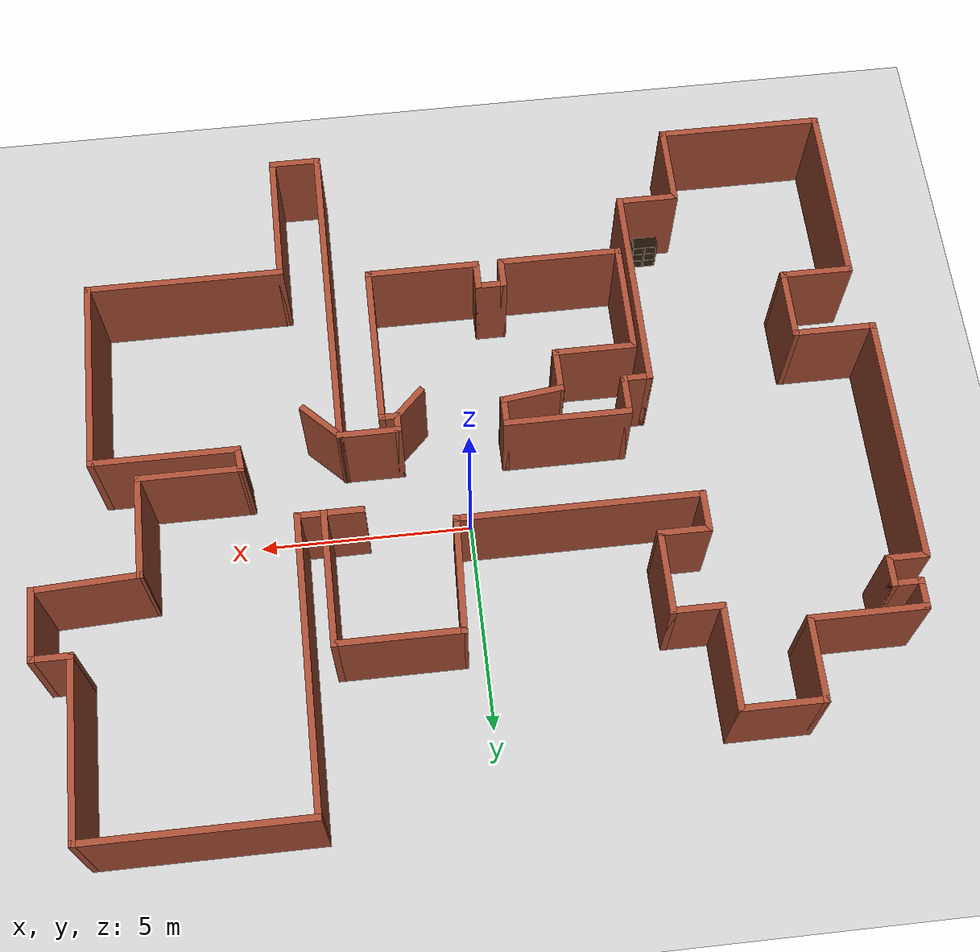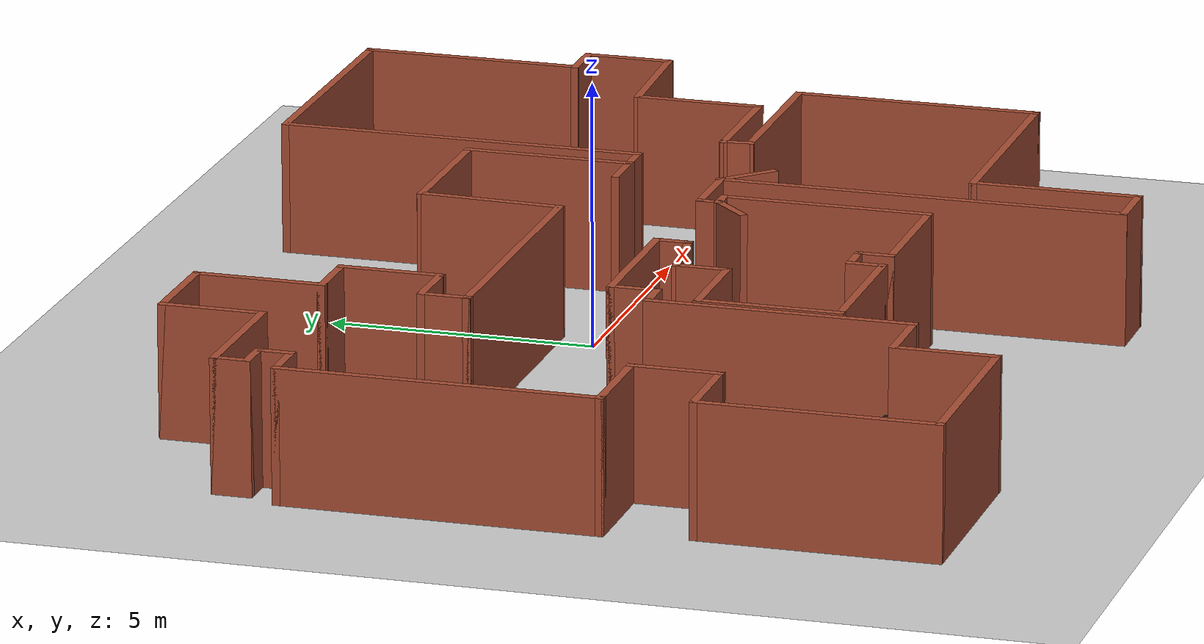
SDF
<sdf version="1.6">
 <world name="default">
  <light name="sun" type="directional">
   <pose>0 0 10 0 -0 0</pose>
   <diffuse>0.8 0.8 0.8 1</diffuse>
   <specular>0.2 0.2 0.2 1</specular>
   <attenuation>
    <range>1000</range>
    <constant>0.9</constant>
    <linear>0.01</linear>
    <quadratic>0.001</quadratic>
   </attenuation>
   <direction>-0.5 0.1 -0.9</direction>
  </light>
  <model name="ground_plane">
   <static>1</static>
   <link name="link">
    <collision name="collision">
     <geometry><plane><normal>0 0 1</normal><size>100 100</size></plane></geometry>
     <surface>
      <contact><collide_bitmask>65535</collide_bitmask></contact>
      <friction><ode><mu>100</mu><mu2>50</mu2></ode></friction>
     </surface>
    </collision>
    <visual name="visual">
     <cast_shadows>0</cast_shadows>
     <geometry><plane><normal>0 0 1</normal><size>100 100</size></plane></geometry>
     <material>
      <script><uri>file://media/materials/scripts/gazebo.material</uri><name>Gazebo/Grey</name></script>
     </material>
    </visual>
   </link>
  </model>
  <gravity>0 0 -9.8</gravity>
  <magnetic_field>6e-06 2.3e-05 -4.2e-05</magnetic_field>
  <atmosphere type="adiabatic"/>
  <physics name="default_physics" default="0" type="ode">
   <max_step_size>0.001</max_step_size>
   <real_time_factor>1</real_time_factor>
   <real_time_update_rate>1000</real_time_update_rate>
  </physics>
  <scene><ambient>0.4 0.4 0.4 1</ambient><background>0.7 0.7 0.7 1</background><shadows>1</shadows></scene>
  <audio><device>default</device></audio>
  <spherical_coordinates>
   <surface_model>EARTH_WGS84</surface_model>
   <latitude_deg>0</latitude_deg>
   <longitude_deg>0</longitude_deg>
   <elevation>0</elevation>
   <heading_deg>0</heading_deg>
  </spherical_coordinates>
  <model name="map_122">
   <pose>-0.004992 -1.02933 0 0 -0 0</pose>
   <link name="Wall_10">
    <collision name="Wall_10_Collision">
     <geometry><box><size>0.75 0.15 2.5</size></box></geometry>
     <pose>0 0 1.25 0 -0 0</pose>
    </collision>
    <visual name="Wall_10_Visual">
     <pose>0 0 1.25 0 -0 0</pose>
     <geometry><box><size>0.75 0.15 2.5</size></box></geometry>
     <material>
      <script><uri>file://media/materials/scripts/gazebo.material</uri><name>Gazebo/Bricks</name></script>
      <ambient>1 1 1 1</ambient>
     </material>
     <meta><layer>0</layer></meta>
    </visual>
    <pose>-9.05162 4.075 0 0 -0 -1.5708</pose>
   </link>
   <link name="Wall_11">
    <collision name="Wall_11_Collision">
     <geometry><box><size>1 0.15 2.5</size></box></geometry>
     <pose>0 0 1.25 0 -0 0</pose>
    </collision>
    <visual name="Wall_11_Visual">
     <pose>0 0 1.25 0 -0 0</pose>
     <geometry><box><size>1 0.15 2.5</size></box></geometry>
     <material>
      <script><uri>file://media/materials/scripts/gazebo.material</uri><name>Gazebo/Bricks</name></script>
      <ambient>1 1 1 1</ambient>
     </material>
     <meta><layer>0</layer></meta>
    </visual>
    <pose>-9.47662 3.775 0 0 -0 3.14159</pose>
   </link>
   <link name="Wall_12">
    <collision name="Wall_12_Collision">
     <geometry><box><size>6 0.15 2.5</size></box></geometry>
     <pose>0 0 1.25 0 -0 0</pose>
    </collision>
    <visual name="Wall_12_Visual">
     <pose>0 0 1.25 0 -0 0</pose>
     <geometry><box><size>6 0.15 2.5</size></box></geometry>
     <material>
      <script><uri>file://media/materials/scripts/gazebo.material</uri><name>Gazebo/Bricks</name></script>
      <ambient>1 1 1 1</ambient>
     </material>
     <meta><layer>0</layer></meta>
    </visual>
    <pose>-9.90162 0.85 0 0 -0 -1.5708</pose>
   </link>
   <link name="Wall_13">
    <collision name="Wall_13_Collision">
     <geometry><box><size>2 0.15 2.5</size></box></geometry>
     <pose>0 0 1.25 0 -0 0</pose>
    </collision>
    <visual name="Wall_13_Visual">
     <pose>0 0 1.25 0 -0 0</pose>
     <geometry><box><size>2 0.15 2.5</size></box></geometry>
     <material>
      <script><uri>file://media/materials/scripts/gazebo.material</uri><name>Gazebo/Bricks</name></script>
      <ambient>1 1 1 1</ambient>
     </material>
     <meta><layer>0</layer></meta>
    </visual>
    <pose>-8.97662 -2.075 0 0 -0 0</pose>
   </link>
   <link name="Wall_14">
    <collision name="Wall_14_Collision">
     <geometry><box><size>1.75 0.15 2.5</size></box></geometry>
     <pose>0 0 1.25 0 -0 0</pose>
    </collision>
    <visual name="Wall_14_Visual">
     <pose>0 0 1.25 0 -0 0</pose>
     <geometry><box><size>1.75 0.15 2.5</size></box></geometry>
     <material>
      <script><uri>file://media/materials/scripts/gazebo.material</uri><name>Gazebo/Bricks</name></script>
      <ambient>1 1 1 1</ambient>
     </material>
     <meta><layer>0</layer></meta>
    </visual>
    <pose>-8.05162 -2.875 0 0 -0 -1.5708</pose>
   </link>
   <link name="Wall_15">
    <collision name="Wall_15_Collision">
     <geometry><box><size>1.75 0.15 2.5</size></box></geometry>
     <pose>0 0 1.25 0 -0 0</pose>
    </collision>
    <visual name="Wall_15_Visual">
     <pose>0 0 1.25 0 -0 0</pose>
     <geometry><box><size>1.75 0.15 2.5</size></box></geometry>
     <material>
      <script><uri>file://media/materials/scripts/gazebo.material</uri><name>Gazebo/Bricks</name></script>
      <ambient>1 1 1 1</ambient>
     </material>
     <meta><layer>0</layer></meta>
    </visual>
    <pose>-8.85162 -3.675 0 0 -0 3.14159</pose>
   </link>
   <link name="Wall_16">
    <collision name="Wall_16_Collision">
     <geometry><box><size>4.5 0.15 2.5</size></box></geometry>
     <pose>0 0 1.25 0 -0 0</pose>
    </collision>
    <visual name="Wall_16_Visual">
     <pose>0 0 1.25 0 -0 0</pose>
     <geometry><box><size>4.5 0.15 2.5</size></box></geometry>
     <material>
      <script><uri>file://media/materials/scripts/gazebo.material</uri><name>Gazebo/Bricks</name></script>
      <ambient>1 1 1 1</ambient>
     </material>
     <meta><layer>0</layer></meta>
    </visual>
    <pose>-9.65162 -5.85 0 0 -0 -1.5708</pose>
   </link>
   <link name="Wall_17">
    <collision name="Wall_17_Collision">
     <geometry><box><size>4 0.15 2.5</size></box></geometry>
     <pose>0 0 1.25 0 -0 0</pose>
    </collision>
    <visual name="Wall_17_Visual">
     <pose>0 0 1.25 0 -0 0</pose>
     <geometry><box><size>4 0.15 2.5</size></box></geometry>
     <material>
      <script><uri>file://media/materials/scripts/gazebo.material</uri><name>Gazebo/Bricks</name></script>
      <ambient>1 1 1 1</ambient>
     </material>
     <meta><layer>0</layer></meta>
    </visual>
    <pose>-7.72662 -8.025 0 0 -0 0</pose>
   </link>
   <link name="Wall_18">
    <collision name="Wall_18_Collision">
     <geometry><box><size>2 0.15 2.5</size></box></geometry>
     <pose>0 0 1.25 0 -0 0</pose>
    </collision>
    <visual name="Wall_18_Visual">
     <pose>0 0 1.25 0 -0 0</pose>
     <geometry><box><size>2 0.15 2.5</size></box></geometry>
     <material>
      <script><uri>file://media/materials/scripts/gazebo.material</uri><name>Gazebo/Bricks</name></script>
      <ambient>1 1 1 1</ambient>
     </material>
     <meta><layer>0</layer></meta>
    </visual>
    <pose>-5.80162 -7.1 0 0 -0 1.5708</pose>
   </link>
   <link name="Wall_19">
    <collision name="Wall_19_Collision">
     <geometry><box><size>1.5 0.15 2.5</size></box></geometry>
     <pose>0 0 1.25 0 -0 0</pose>
    </collision>
    <visual name="Wall_19_Visual">
     <pose>0 0 1.25 0 -0 0</pose>
     <geometry><box><size>1.5 0.15 2.5</size></box></geometry>
     <material>
      <script><uri>file://media/materials/scripts/gazebo.material</uri><name>Gazebo/Bricks</name></script>
      <ambient>1 1 1 1</ambient>
     </material>
     <meta><layer>0</layer></meta>
    </visual>
    <pose>-5.12662 -6.175 0 0 -0 0</pose>
   </link>
   <link name="Wall_20">
    <collision name="Wall_20_Collision">
     <geometry><box><size>5 0.15 2.5</size></box></geometry>
     <pose>0 0 1.25 0 -0 0</pose>
    </collision>
    <visual name="Wall_20_Visual">
     <pose>0 0 1.25 0 -0 0</pose>
     <geometry><box><size>5 0.15 2.5</size></box></geometry>
     <material>
      <script><uri>file://media/materials/scripts/gazebo.material</uri><name>Gazebo/Bricks</name></script>
      <ambient>1 1 1 1</ambient>
     </material>
     <meta><layer>0</layer></meta>
    </visual>
    <pose>-4.45162 -3.75 0 0 -0 1.5708</pose>
   </link>
   <link name="Wall_21">
    <collision name="Wall_21_Collision">
     <geometry><box><size>0.75 0.15 2.5</size></box></geometry>
     <pose>0 0 1.25 0 -0 0</pose>
    </collision>
    <visual name="Wall_21_Visual">
     <pose>0 0 1.25 0 -0 0</pose>
     <geometry><box><size>0.75 0.15 2.5</size></box></geometry>
     <material>
      <script><uri>file://media/materials/scripts/gazebo.material</uri><name>Gazebo/Bricks</name></script>
      <ambient>1 1 1 1</ambient>
     </material>
     <meta><layer>0</layer></meta>
    </visual>
    <pose>-4.15162 -1.325 0 0 -0 0</pose>
   </link>
   <link name="Wall_22">
    <collision name="Wall_22_Collision">
     <geometry><box><size>1 0.15 2.5</size></box></geometry>
     <pose>0 0 1.25 0 -0 0</pose>
    </collision>
    <visual name="Wall_22_Visual">
     <pose>0 0 1.25 0 -0 0</pose>
     <geometry><box><size>1 0.15 2.5</size></box></geometry>
     <material>
      <script><uri>file://media/materials/scripts/gazebo.material</uri><name>Gazebo/Bricks</name></script>
      <ambient>1 1 1 1</ambient>
     </material>
     <meta><layer>0</layer></meta>
    </visual>
    <pose>-3.85162 -0.9 0 0 -0 1.5708</pose>
   </link>
   <link name="Wall_26">
    <collision name="Wall_26_Collision">
     <geometry><box><size>1.08818 0.15 2.5</size></box></geometry>
     <pose>0 0 1.25 0 -0 0</pose>
    </collision>
    <visual name="Wall_26_Visual">
     <pose>0 0 1.25 0 -0 0</pose>
     <geometry><box><size>1.08818 0.15 2.5</size></box></geometry>
     <material>
      <script><uri>file://media/materials/scripts/gazebo.material</uri><name>Gazebo/Bricks</name></script>
      <ambient>1 1 1 1</ambient>
     </material>
     <meta><layer>0</layer></meta>
    </visual>
    <pose>-2.35162 -1.70591 0 0 -0 -1.5708</pose>
   </link>
   <link name="Wall_27">
    <collision name="Wall_27_Collision">
     <geometry><box><size>2 0.15 2.5</size></box></geometry>
     <pose>0 0 1.25 0 -0 0</pose>
    </collision>
    <visual name="Wall_27_Visual">
     <pose>0 0 1.25 0 -0 0</pose>
     <geometry><box><size>2 0.15 2.5</size></box></geometry>
     <material>
      <script><uri>file://media/materials/scripts/gazebo.material</uri><name>Gazebo/Bricks</name></script>
      <ambient>1 1 1 1</ambient>
     </material>
     <meta><layer>0</layer></meta>
    </visual>
    <pose>-3.27662 -2.175 0 0 -0 3.14159</pose>
   </link>
   <link name="Wall_28">
    <collision name="Wall_28_Collision">
     <geometry><box><size>2.75 0.15 2.5</size></box></geometry>
     <pose>0 0 1.25 0 -0 0</pose>
    </collision>
    <visual name="Wall_28_Visual">
     <pose>0 0 1.25 0 -0 0</pose>
     <geometry><box><size>2.75 0.15 2.5</size></box></geometry>
     <material>
      <script><uri>file://media/materials/scripts/gazebo.material</uri><name>Gazebo/Bricks</name></script>
      <ambient>1 1 1 1</ambient>
     </material>
     <meta><layer>0</layer></meta>
    </visual>
    <pose>-4.20162 -3.475 0 0 -0 -1.5708</pose>
   </link>
   <link name="Wall_29">
    <collision name="Wall_29_Collision">
     <geometry><box><size>3 0.15 2.5</size></box></geometry>
     <pose>0 0 1.25 0 -0 0</pose>
    </collision>
    <visual name="Wall_29_Visual">
     <pose>0 0 1.25 0 -0 0</pose>
     <geometry><box><size>3 0.15 2.5</size></box></geometry>
     <material>
      <script><uri>file://media/materials/scripts/gazebo.material</uri><name>Gazebo/Bricks</name></script>
      <ambient>1 1 1 1</ambient>
     </material>
     <meta><layer>0</layer></meta>
    </visual>
    <pose>-2.77662 -4.775 0 0 -0 0</pose>
   </link>
   <link name="Wall_30">
    <collision name="Wall_30_Collision">
     <geometry><box><size>0.75 0.15 2.5</size></box></geometry>
     <pose>0 0 1.25 0 -0 0</pose>
    </collision>
    <visual name="Wall_30_Visual">
     <pose>0 0 1.25 0 -0 0</pose>
     <geometry><box><size>0.75 0.15 2.5</size></box></geometry>
     <material>
      <script><uri>file://media/materials/scripts/gazebo.material</uri><name>Gazebo/Bricks</name></script>
      <ambient>1 1 1 1</ambient>
     </material>
     <meta><layer>0</layer></meta>
    </visual>
    <pose>-1.35162 -4.475 0 0 -0 1.5708</pose>
   </link>
   <link name="Wall_31">
    <collision name="Wall_31_Collision">
     <geometry><box><size>0.75 0.15 2.5</size></box></geometry>
     <pose>0 0 1.25 0 -0 0</pose>
    </collision>
    <visual name="Wall_31_Visual">
     <pose>0 0 1.25 0 -0 0</pose>
     <geometry><box><size>0.75 0.15 2.5</size></box></geometry>
     <material>
      <script><uri>file://media/materials/scripts/gazebo.material</uri><name>Gazebo/Bricks</name></script>
      <ambient>1 1 1 1</ambient>
     </material>
     <meta><layer>0</layer></meta>
    </visual>
    <pose>-1.05162 -4.175 0 0 -0 0</pose>
   </link>
   <link name="Wall_32">
    <collision name="Wall_32_Collision">
     <geometry><box><size>0.75 0.15 2.5</size></box></geometry>
     <pose>0 0 1.25 0 -0 0</pose>
    </collision>
    <visual name="Wall_32_Visual">
     <pose>0 0 1.25 0 -0 0</pose>
     <geometry><box><size>0.75 0.15 2.5</size></box></geometry>
     <material>
      <script><uri>file://media/materials/scripts/gazebo.material</uri><name>Gazebo/Bricks</name></script>
      <ambient>1 1 1 1</ambient>
     </material>
     <meta><layer>0</layer></meta>
    </visual>
    <pose>-0.751622 -4.475 0 0 -0 -1.5708</pose>
   </link>
   <link name="Wall_33">
    <collision name="Wall_33_Collision">
     <geometry><box><size>2.75 0.15 2.5</size></box></geometry>
     <pose>0 0 1.25 0 -0 0</pose>
    </collision>
    <visual name="Wall_33_Visual">
     <pose>0 0 1.25 0 -0 0</pose>
     <geometry><box><size>2.75 0.15 2.5</size></box></geometry>
     <material>
      <script><uri>file://media/materials/scripts/gazebo.material</uri><name>Gazebo/Bricks</name></script>
      <ambient>1 1 1 1</ambient>
     </material>
     <meta><layer>0</layer></meta>
    </visual>
    <pose>0.548378 -4.775 0 0 -0 0</pose>
   </link>
   <link name="Wall_38">
    <collision name="Wall_38_Collision">
     <geometry><box><size>4 0.15 2.5</size></box></geometry>
     <pose>0 0 1.25 0 -0 0</pose>
    </collision>
    <visual name="Wall_38_Visual">
     <pose>0 0 1.25 0 -0 0</pose>
     <geometry><box><size>4 0.15 2.5</size></box></geometry>
     <material>
      <script><uri>file://media/materials/scripts/gazebo.material</uri><name>Gazebo/Bricks</name></script>
      <ambient>1 1 1 1</ambient>
     </material>
     <meta><layer>0</layer></meta>
    </visual>
    <pose>1.84838 -2.85 0 0 -0 1.5708</pose>
   </link>
   <link name="Wall_39">
    <collision name="Wall_39_Collision">
     <geometry><box><size>0.5 0.15 2.5</size></box></geometry>
     <pose>0 0 1.25 0 -0 0</pose>
    </collision>
    <visual name="Wall_39_Visual">
     <pose>0 0 1.25 0 -0 0</pose>
     <geometry><box><size>0.5 0.15 2.5</size></box></geometry>
     <material>
      <script><uri>file://media/materials/scripts/gazebo.material</uri><name>Gazebo/Bricks</name></script>
      <ambient>1 1 1 1</ambient>
     </material>
     <meta><layer>0</layer></meta>
    </visual>
    <pose>1.67338 -0.925 0 0 -0 3.14159</pose>
   </link>
   <link name="Wall_40">
    <collision name="Wall_40_Collision">
     <geometry><box><size>0.5 0.15 2.5</size></box></geometry>
     <pose>0 0 1.25 0 -0 0</pose>
    </collision>
    <visual name="Wall_40_Visual">
     <pose>0 0 1.25 0 -0 0</pose>
     <geometry><box><size>0.5 0.15 2.5</size></box></geometry>
     <material>
      <script><uri>file://media/materials/scripts/gazebo.material</uri><name>Gazebo/Bricks</name></script>
      <ambient>1 1 1 1</ambient>
     </material>
     <meta><layer>0</layer></meta>
    </visual>
    <pose>1.49838 -0.75 0 0 -0 1.5708</pose>
   </link>
   <link name="Wall_44">
    <collision name="Wall_44_Collision">
     <geometry><box><size>3.25 0.15 2.5</size></box></geometry>
     <pose>0 0 1.25 0 -0 0</pose>
    </collision>
    <visual name="Wall_44_Visual">
     <pose>0 0 1.25 0 -0 0</pose>
     <geometry><box><size>3.25 0.15 2.5</size></box></geometry>
     <material>
      <script><uri>file://media/materials/scripts/gazebo.material</uri><name>Gazebo/Bricks</name></script>
      <ambient>1 1 1 1</ambient>
     </material>
     <meta><layer>0</layer></meta>
    </visual>
    <pose>3.94838 -6.625 0 0 -0 1.5708</pose>
   </link>
   <link name="Wall_45">
    <collision name="Wall_45_Collision">
     <geometry><box><size>4.75 0.15 2.5</size></box></geometry>
     <pose>0 0 1.25 0 -0 0</pose>
    </collision>
    <visual name="Wall_45_Visual">
     <pose>0 0 1.25 0 -0 0</pose>
     <geometry><box><size>4.75 0.15 2.5</size></box></geometry>
     <material>
      <script><uri>file://media/materials/scripts/gazebo.material</uri><name>Gazebo/Bricks</name></script>
      <ambient>1 1 1 1</ambient>
     </material>
     <meta><layer>0</layer></meta>
    </visual>
    <pose>6.24838 -5.075 0 0 -0 0</pose>
   </link>
   <link name="Wall_46">
    <collision name="Wall_46_Collision">
     <geometry><box><size>4.75 0.15 2.5</size></box></geometry>
     <pose>0 0 1.25 0 -0 0</pose>
    </collision>
    <visual name="Wall_46_Visual">
     <pose>0 0 1.25 0 -0 0</pose>
     <geometry><box><size>4.75 0.15 2.5</size></box></geometry>
     <material>
      <script><uri>file://media/materials/scripts/gazebo.material</uri><name>Gazebo/Bricks</name></script>
      <ambient>1 1 1 1</ambient>
     </material>
     <meta><layer>0</layer></meta>
    </visual>
    <pose>8.54838 -2.775 0 0 -0 1.5708</pose>
   </link>
   <link name="Wall_47">
    <collision name="Wall_47_Collision">
     <geometry><box><size>3.5 0.15 2.5</size></box></geometry>
     <pose>0 0 1.25 0 -0 0</pose>
    </collision>
    <visual name="Wall_47_Visual">
     <pose>0 0 1.25 0 -0 0</pose>
     <geometry><box><size>3.5 0.15 2.5</size></box></geometry>
     <material>
      <script><uri>file://media/materials/scripts/gazebo.material</uri><name>Gazebo/Bricks</name></script>
      <ambient>1 1 1 1</ambient>
     </material>
     <meta><layer>0</layer></meta>
    </visual>
    <pose>6.87338 -0.475 0 0 -0 3.14159</pose>
   </link>
   <link name="Wall_51">
    <collision name="Wall_51_Collision">
     <geometry><box><size>0.646458 0.15 2.5</size></box></geometry>
     <pose>0 0 1.25 0 -0 0</pose>
    </collision>
    <visual name="Wall_51_Visual">
     <pose>0 0 1.25 0 -0 0</pose>
     <geometry><box><size>0.646458 0.15 2.5</size></box></geometry>
     <material>
      <script><uri>file://media/materials/scripts/gazebo.material</uri><name>Gazebo/Bricks</name></script>
      <ambient>1 1 1 1</ambient>
     </material>
     <meta><layer>0</layer></meta>
    </visual>
    <pose>5.17178 -0.2282 0 0 -0 1.67816</pose>
   </link>
   <link name="Wall_55">
    <collision name="Wall_55_Collision">
     <geometry><box><size>1.75 0.15 2.5</size></box></geometry>
     <pose>0 0 1.25 0 -0 0</pose>
    </collision>
    <visual name="Wall_55_Visual">
     <pose>0 0 1.25 0 -0 0</pose>
     <geometry><box><size>1.75 0.15 2.5</size></box></geometry>
     <material>
      <script><uri>file://media/materials/scripts/gazebo.material</uri><name>Gazebo/Bricks</name></script>
      <ambient>1 1 1 1</ambient>
     </material>
     <meta><layer>0</layer></meta>
    </visual>
    <pose>9.89838 3.275 0 0 -0 1.5708</pose>
   </link>
   <link name="Wall_56">
    <collision name="Wall_56_Collision">
     <geometry><box><size>1 0.15 2.5</size></box></geometry>
     <pose>0 0 1.25 0 -0 0</pose>
    </collision>
    <visual name="Wall_56_Visual">
     <pose>0 0 1.25 0 -0 0</pose>
     <geometry><box><size>1 0.15 2.5</size></box></geometry>
     <material>
      <script><uri>file://media/materials/scripts/gazebo.material</uri><name>Gazebo/Bricks</name></script>
      <ambient>1 1 1 1</ambient>
     </material>
     <meta><layer>0</layer></meta>
    </visual>
    <pose>9.47338 4.075 0 0 -0 3.14159</pose>
   </link>
   <link name="Wall_57">
    <collision name="Wall_57_Collision">
     <geometry><box><size>4.25 0.15 2.5</size></box></geometry>
     <pose>0 0 1.25 0 -0 0</pose>
    </collision>
    <visual name="Wall_57_Visual">
     <pose>0 0 1.25 0 -0 0</pose>
     <geometry><box><size>4.25 0.15 2.5</size></box></geometry>
     <material>
      <script><uri>file://media/materials/scripts/gazebo.material</uri><name>Gazebo/Bricks</name></script>
      <ambient>1 1 1 1</ambient>
     </material>
     <meta><layer>0</layer></meta>
    </visual>
    <pose>9.04838 6.125 0 0 -0 1.5708</pose>
   </link>
   <link name="Wall_6">
    <collision name="Wall_6_Collision">
     <geometry><box><size>2 0.15 2.5</size></box></geometry>
     <pose>0 0 1.25 0 -0 0</pose>
    </collision>
    <visual name="Wall_6_Visual">
     <pose>0 0 1.25 0 -0 0</pose>
     <geometry><box><size>2 0.15 2.5</size></box></geometry>
     <material>
      <script><uri>file://media/materials/scripts/gazebo.material</uri><name>Gazebo/Bricks</name></script>
      <ambient>1 1 1 1</ambient>
     </material>
     <meta><layer>0</layer></meta>
    </visual>
    <pose>-7.05162 5.9 0 0 -0 -1.5708</pose>
   </link>
   <link name="Wall_60">
    <collision name="Wall_60_Collision">
     <geometry><box><size>2.5 0.15 2.5</size></box></geometry>
     <pose>0 0 1.25 0 -0 0</pose>
    </collision>
    <visual name="Wall_60_Visual">
     <pose>0 0 1.25 0 -0 0</pose>
     <geometry><box><size>2.5 0.15 2.5</size></box></geometry>
     <material>
      <script><uri>file://media/materials/scripts/gazebo.material</uri><name>Gazebo/Bricks</name></script>
      <ambient>1 1 1 1</ambient>
     </material>
     <meta><layer>0</layer></meta>
    </visual>
    <pose>6.32018 0.018599 0 0 -0 0</pose>
   </link>
   <link name="Wall_61">
    <collision name="Wall_61_Collision">
     <geometry><box><size>2.5 0.15 2.5</size></box></geometry>
     <pose>0 0 1.25 0 -0 0</pose>
    </collision>
    <visual name="Wall_61_Visual">
     <pose>0 0 1.25 0 -0 0</pose>
     <geometry><box><size>2.5 0.15 2.5</size></box></geometry>
     <material>
      <script><uri>file://media/materials/scripts/gazebo.material</uri><name>Gazebo/Bricks</name></script>
      <ambient>1 1 1 1</ambient>
     </material>
     <meta><layer>0</layer></meta>
    </visual>
    <pose>7.49518 1.1936 0 0 -0 1.5708</pose>
   </link>
   <link name="Wall_62">
    <collision name="Wall_62_Collision">
     <geometry><box><size>2.55556 0.15 2.5</size></box></geometry>
     <pose>0 0 1.25 0 -0 0</pose>
    </collision>
    <visual name="Wall_62_Visual">
     <pose>0 0 1.25 0 -0 0</pose>
     <geometry><box><size>2.55556 0.15 2.5</size></box></geometry>
     <material>
      <script><uri>file://media/materials/scripts/gazebo.material</uri><name>Gazebo/Bricks</name></script>
      <ambient>1 1 1 1</ambient>
     </material>
     <meta><layer>0</layer></meta>
    </visual>
    <pose>8.69678 2.4218 0 0 -0 0.044246</pose>
   </link>
   <link name="Wall_64">
    <collision name="Wall_64_Collision">
     <geometry><box><size>5.25 0.15 2.5</size></box></geometry>
     <pose>0 0 1.25 0 -0 0</pose>
    </collision>
    <visual name="Wall_64_Visual">
     <pose>0 0 1.25 0 -0 0</pose>
     <geometry><box><size>5.25 0.15 2.5</size></box></geometry>
     <material>
      <script><uri>file://media/materials/scripts/gazebo.material</uri><name>Gazebo/Bricks</name></script>
      <ambient>1 1 1 1</ambient>
     </material>
     <meta><layer>0</layer></meta>
    </visual>
    <pose>6.49838 8.175 0 0 -0 3.14159</pose>
   </link>
   <link name="Wall_65">
    <collision name="Wall_65_Collision">
     <geometry><box><size>7 0.15 2.5</size></box></geometry>
     <pose>0 0 1.25 0 -0 0</pose>
    </collision>
    <visual name="Wall_65_Visual">
     <pose>0 0 1.25 0 -0 0</pose>
     <geometry><box><size>7 0.15 2.5</size></box></geometry>
     <material>
      <script><uri>file://media/materials/scripts/gazebo.material</uri><name>Gazebo/Bricks</name></script>
      <ambient>1 1 1 1</ambient>
     </material>
     <meta><layer>0</layer></meta>
    </visual>
    <pose>3.94838 4.75 0 0 -0 -1.5708</pose>
   </link>
   <link name="Wall_66">
    <collision name="Wall_66_Collision">
     <geometry><box><size>0.75 0.15 2.5</size></box></geometry>
     <pose>0 0 1.25 0 -0 0</pose>
    </collision>
    <visual name="Wall_66_Visual">
     <pose>0 0 1.25 0 -0 0</pose>
     <geometry><box><size>0.75 0.15 2.5</size></box></geometry>
     <material>
      <script><uri>file://media/materials/scripts/gazebo.material</uri><name>Gazebo/Bricks</name></script>
      <ambient>1 1 1 1</ambient>
     </material>
     <meta><layer>0</layer></meta>
    </visual>
    <pose>3.64838 1.325 0 0 -0 3.14159</pose>
   </link>
   <link name="Wall_67">
    <collision name="Wall_67_Collision">
     <geometry><box><size>3.25 0.15 2.5</size></box></geometry>
     <pose>0 0 1.25 0 -0 0</pose>
    </collision>
    <visual name="Wall_67_Visual">
     <pose>0 0 1.25 0 -0 0</pose>
     <geometry><box><size>3.25 0.15 2.5</size></box></geometry>
     <material>
      <script><uri>file://media/materials/scripts/gazebo.material</uri><name>Gazebo/Bricks</name></script>
      <ambient>1 1 1 1</ambient>
     </material>
     <meta><layer>0</layer></meta>
    </visual>
    <pose>3.34838 2.875 0 0 -0 1.5708</pose>
   </link>
   <link name="Wall_68">
    <collision name="Wall_68_Collision">
     <geometry><box><size>3 0.15 2.5</size></box></geometry>
     <pose>0 0 1.25 0 -0 0</pose>
    </collision>
    <visual name="Wall_68_Visual">
     <pose>0 0 1.25 0 -0 0</pose>
     <geometry><box><size>3 0.15 2.5</size></box></geometry>
     <material>
      <script><uri>file://media/materials/scripts/gazebo.material</uri><name>Gazebo/Bricks</name></script>
      <ambient>1 1 1 1</ambient>
     </material>
     <meta><layer>0</layer></meta>
    </visual>
    <pose>1.92338 4.425 0 0 -0 3.14159</pose>
   </link>
   <link name="Wall_7">
    <collision name="Wall_7_Collision">
     <geometry><box><size>2.75 0.15 2.5</size></box></geometry>
     <pose>0 0 1.25 0 -0 0</pose>
    </collision>
    <visual name="Wall_7_Visual">
     <pose>0 0 1.25 0 -0 0</pose>
     <geometry><box><size>2.75 0.15 2.5</size></box></geometry>
     <material>
      <script><uri>file://media/materials/scripts/gazebo.material</uri><name>Gazebo/Bricks</name></script>
      <ambient>1 1 1 1</ambient>
     </material>
     <meta><layer>0</layer></meta>
    </visual>
    <pose>-8.35162 4.975 0 0 -0 3.14159</pose>
   </link>
   <link name="Wall_72">
    <collision name="Wall_72_Collision">
     <geometry><box><size>2 0.15 2.5</size></box></geometry>
     <pose>0 0 1.25 0 -0 0</pose>
    </collision>
    <visual name="Wall_72_Visual">
     <pose>0 0 1.25 0 -0 0</pose>
     <geometry><box><size>2 0.15 2.5</size></box></geometry>
     <material>
      <script><uri>file://media/materials/scripts/gazebo.material</uri><name>Gazebo/Bricks</name></script>
      <ambient>1 1 1 1</ambient>
     </material>
     <meta><layer>0</layer></meta>
    </visual>
    <pose>-6.12662 6.825 0 0 -0 0</pose>
   </link>
   <link name="Wall_73">
    <collision name="Wall_73_Collision">
     <geometry><box><size>2.5 0.15 2.5</size></box></geometry>
     <pose>0 0 1.25 0 -0 0</pose>
    </collision>
    <visual name="Wall_73_Visual">
     <pose>0 0 1.25 0 -0 0</pose>
     <geometry><box><size>2.5 0.15 2.5</size></box></geometry>
     <material>
      <script><uri>file://media/materials/scripts/gazebo.material</uri><name>Gazebo/Bricks</name></script>
      <ambient>1 1 1 1</ambient>
     </material>
     <meta><layer>0</layer></meta>
    </visual>
    <pose>-5.20162 5.65 0 0 -0 -1.5708</pose>
   </link>
   <link name="Wall_74">
    <collision name="Wall_74_Collision">
     <geometry><box><size>1.25 0.15 2.5</size></box></geometry>
     <pose>0 0 1.25 0 -0 0</pose>
    </collision>
    <visual name="Wall_74_Visual">
     <pose>0 0 1.25 0 -0 0</pose>
     <geometry><box><size>1.25 0.15 2.5</size></box></geometry>
     <material>
      <script><uri>file://media/materials/scripts/gazebo.material</uri><name>Gazebo/Bricks</name></script>
      <ambient>1 1 1 1</ambient>
     </material>
     <meta><layer>0</layer></meta>
    </visual>
    <pose>-4.65162 4.475 0 0 -0 0</pose>
   </link>
   <link name="Wall_75">
    <collision name="Wall_75_Collision">
     <geometry><box><size>2 0.15 2.5</size></box></geometry>
     <pose>0 0 1.25 0 -0 0</pose>
    </collision>
    <visual name="Wall_75_Visual">
     <pose>0 0 1.25 0 -0 0</pose>
     <geometry><box><size>2 0.15 2.5</size></box></geometry>
     <material>
      <script><uri>file://media/materials/scripts/gazebo.material</uri><name>Gazebo/Bricks</name></script>
      <ambient>1 1 1 1</ambient>
     </material>
     <meta><layer>0</layer></meta>
    </visual>
    <pose>-4.10162 3.55 0 0 -0 -1.5708</pose>
   </link>
   <link name="Wall_76">
    <collision name="Wall_76_Collision">
     <geometry><box><size>1.25 0.15 2.5</size></box></geometry>
     <pose>0 0 1.25 0 -0 0</pose>
    </collision>
    <visual name="Wall_76_Visual">
     <pose>0 0 1.25 0 -0 0</pose>
     <geometry><box><size>1.25 0.15 2.5</size></box></geometry>
     <material>
      <script><uri>file://media/materials/scripts/gazebo.material</uri><name>Gazebo/Bricks</name></script>
      <ambient>1 1 1 1</ambient>
     </material>
     <meta><layer>0</layer></meta>
    </visual>
    <pose>-4.65162 2.625 0 0 -0 3.14159</pose>
   </link>
   <link name="Wall_77">
    <collision name="Wall_77_Collision">
     <geometry><box><size>1 0.15 2.5</size></box></geometry>
     <pose>0 0 1.25 0 -0 0</pose>
    </collision>
    <visual name="Wall_77_Visual">
     <pose>0 0 1.25 0 -0 0</pose>
     <geometry><box><size>1 0.15 2.5</size></box></geometry>
     <material>
      <script><uri>file://media/materials/scripts/gazebo.material</uri><name>Gazebo/Bricks</name></script>
      <ambient>1 1 1 1</ambient>
     </material>
     <meta><layer>0</layer></meta>
    </visual>
    <pose>-5.20162 2.2 0 0 -0 -1.5708</pose>
   </link>
   <link name="Wall_79">
    <collision name="Wall_79_Collision">
     <geometry><box><size>5.75 0.15 2.5</size></box></geometry>
     <pose>0 0 1.25 0 -0 0</pose>
    </collision>
    <visual name="Wall_79_Visual">
     <pose>0 0 1.25 0 -0 0</pose>
     <geometry><box><size>5.75 0.15 2.5</size></box></geometry>
     <material>
      <script><uri>file://media/materials/scripts/gazebo.material</uri><name>Gazebo/Bricks</name></script>
      <ambient>1 1 1 1</ambient>
     </material>
     <meta><layer>0</layer></meta>
    </visual>
    <pose>-2.40162 1.775 0 0 -0 0</pose>
   </link>
   <link name="Wall_8">
    <collision name="Wall_8_Collision">
     <geometry><box><size>0.75 0.15 2.5</size></box></geometry>
     <pose>0 0 1.25 0 -0 0</pose>
    </collision>
    <visual name="Wall_8_Visual">
     <pose>0 0 1.25 0 -0 0</pose>
     <geometry><box><size>0.75 0.15 2.5</size></box></geometry>
     <material>
      <script><uri>file://media/materials/scripts/gazebo.material</uri><name>Gazebo/Bricks</name></script>
      <ambient>1 1 1 1</ambient>
     </material>
     <meta><layer>0</layer></meta>
    </visual>
    <pose>-9.65162 4.675 0 0 -0 -1.5708</pose>
   </link>
   <link name="Wall_80">
    <collision name="Wall_80_Collision">
     <geometry><box><size>2.80189 0.15 2.5</size></box></geometry>
     <pose>0 0 1.25 0 -0 0</pose>
    </collision>
    <visual name="Wall_80_Visual">
     <pose>0 0 1.25 0 -0 0</pose>
     <geometry><box><size>2.80189 0.15 2.5</size></box></geometry>
     <material>
      <script><uri>file://media/materials/scripts/gazebo.material</uri><name>Gazebo/Bricks</name></script>
      <ambient>1 1 1 1</ambient>
     </material>
     <meta><layer>0</layer></meta>
    </visual>
    <pose>0.448378 3.1 0 0 -0 1.53308</pose>
   </link>
   <link name="Wall_82">
    <collision name="Wall_82_Collision">
     <geometry><box><size>3 0.15 2.5</size></box></geometry>
     <pose>0 0 1.25 0 -0 0</pose>
    </collision>
    <visual name="Wall_82_Visual">
     <pose>0 0 1.25 0 -0 0</pose>
     <geometry><box><size>3 0.15 2.5</size></box></geometry>
     <material>
      <script><uri>file://media/materials/scripts/gazebo.material</uri><name>Gazebo/Bricks</name></script>
      <ambient>1 1 1 1</ambient>
     </material>
     <meta><layer>0</layer></meta>
    </visual>
    <pose>-2.42662 -0.475 0 0 -0 0</pose>
   </link>
   <link name="Wall_83">
    <collision name="Wall_83_Collision">
     <geometry><box><size>0.75 0.15 2.5</size></box></geometry>
     <pose>0 0 1.25 0 -0 0</pose>
    </collision>
    <visual name="Wall_83_Visual">
     <pose>0 0 1.25 0 -0 0</pose>
     <geometry><box><size>0.75 0.15 2.5</size></box></geometry>
     <material>
      <script><uri>file://media/materials/scripts/gazebo.material</uri><name>Gazebo/Bricks</name></script>
      <ambient>1 1 1 1</ambient>
     </material>
     <meta><layer>0</layer></meta>
    </visual>
    <pose>-1.00162 -0.775 0 0 -0 -1.5708</pose>
   </link>
   <link name="Wall_84">
    <collision name="Wall_84_Collision">
     <geometry><box><size>1.50966 0.15 2.5</size></box></geometry>
     <pose>0 0 1.25 0 -0 0</pose>
    </collision>
    <visual name="Wall_84_Visual">
     <pose>0 0 1.25 0 -0 0</pose>
     <geometry><box><size>1.50966 0.15 2.5</size></box></geometry>
     <material>
      <script><uri>file://media/materials/scripts/gazebo.material</uri><name>Gazebo/Bricks</name></script>
      <ambient>1 1 1 1</ambient>
     </material>
     <meta><layer>0</layer></meta>
    </visual>
    <pose>-1.67662 -1.15591 0 0 -0 -3.02229</pose>
   </link>
   <link name="Wall_86">
    <collision name="Wall_86_Collision">
     <geometry><box><size>1 0.15 2.5</size></box></geometry>
     <pose>0 0 1.25 0 -0 0</pose>
    </collision>
    <visual name="Wall_86_Visual">
     <pose>0 0 1.25 0 -0 0</pose>
     <geometry><box><size>1 0.15 2.5</size></box></geometry>
     <material>
      <script><uri>file://media/materials/scripts/gazebo.material</uri><name>Gazebo/Bricks</name></script>
      <ambient>1 1 1 1</ambient>
     </material>
     <meta><layer>0</layer></meta>
    </visual>
    <pose>1.19786 -1.22552 0 0 -0 -2.35619</pose>
   </link>
   <link name="Wall_88">
    <collision name="Wall_88_Collision">
     <geometry><box><size>1.5 0.15 2.5</size></box></geometry>
     <pose>0 0 1.25 0 -0 0</pose>
    </collision>
    <visual name="Wall_88_Visual">
     <pose>0 0 1.25 0 -0 0</pose>
     <geometry><box><size>1.5 0.15 2.5</size></box></geometry>
     <material>
      <script><uri>file://media/materials/scripts/gazebo.material</uri><name>Gazebo/Bricks</name></script>
      <ambient>1 1 1 1</ambient>
     </material>
     <meta><layer>0</layer></meta>
    </visual>
    <pose>2.17338 -0.575 0 0 -0 0</pose>
   </link>
   <link name="Wall_89">
    <collision name="Wall_89_Collision">
     <geometry><box><size>7.75 0.15 2.5</size></box></geometry>
     <pose>0 0 1.25 0 -0 0</pose>
    </collision>
    <visual name="Wall_89_Visual">
     <pose>0 0 1.25 0 -0 0</pose>
     <geometry><box><size>7.75 0.15 2.5</size></box></geometry>
     <material>
      <script><uri>file://media/materials/scripts/gazebo.material</uri><name>Gazebo/Bricks</name></script>
      <ambient>1 1 1 1</ambient>
     </material>
     <meta><layer>0</layer></meta>
    </visual>
    <pose>2.84838 -4.375 0 0 -0 -1.5708</pose>
   </link>
   <link name="Wall_9">
    <collision name="Wall_9_Collision">
     <geometry><box><size>0.75 0.15 2.5</size></box></geometry>
     <pose>0 0 1.25 0 -0 0</pose>
    </collision>
    <visual name="Wall_9_Visual">
     <pose>0 0 1.25 0 -0 0</pose>
     <geometry><box><size>0.75 0.15 2.5</size></box></geometry>
     <material>
      <script><uri>file://media/materials/scripts/gazebo.material</uri><name>Gazebo/Bricks</name></script>
      <ambient>1 1 1 1</ambient>
     </material>
     <meta><layer>0</layer></meta>
    </visual>
    <pose>-9.35162 4.375 0 0 -0 0</pose>
   </link>
   <link name="Wall_90">
    <collision name="Wall_90_Collision">
     <geometry><box><size>1.25 0.15 2.5</size></box></geometry>
     <pose>0 0 1.25 0 -0 0</pose>
    </collision>
    <visual name="Wall_90_Visual">
     <pose>0 0 1.25 0 -0 0</pose>
     <geometry><box><size>1.25 0.15 2.5</size></box></geometry>
     <material>
      <script><uri>file://media/materials/scripts/gazebo.material</uri><name>Gazebo/Bricks</name></script>
      <ambient>1 1 1 1</ambient>
     </material>
     <meta><layer>0</layer></meta>
    </visual>
    <pose>3.39838 -8.175 0 0 -0 0</pose>
   </link>
   <link name="Wall_92">
    <collision name="Wall_92_Collision">
     <geometry><box><size>1.25 0.15 2.5</size></box></geometry>
     <pose>0 0 1.25 0 -0 0</pose>
    </collision>
    <visual name="Wall_92_Visual">
     <pose>0 0 1.25 0 -0 0</pose>
     <geometry><box><size>1.25 0.15 2.5</size></box></geometry>
     <material>
      <script><uri>file://media/materials/scripts/gazebo.material</uri><name>Gazebo/Bricks</name></script>
      <ambient>1 1 1 1</ambient>
     </material>
     <meta><layer>0</layer></meta>
    </visual>
    <pose>3.23729 -0.963909 0 0 -0 -0.785398</pose>
   </link>
   <link name="Wall_94">
    <collision name="Wall_94_Collision">
     <geometry><box><size>1 0.15 2.5</size></box></geometry>
     <pose>0 0 1.25 0 -0 0</pose>
    </collision>
    <visual name="Wall_94_Visual">
     <pose>0 0 1.25 0 -0 0</pose>
     <geometry><box><size>1 0.15 2.5</size></box></geometry>
     <material>
      <script><uri>file://media/materials/scripts/gazebo.material</uri><name>Gazebo/Bricks</name></script>
      <ambient>1 1 1 1</ambient>
     </material>
     <meta><layer>0</layer></meta>
    </visual>
    <pose>2.92338 1.325 0 0 -0 3.14159</pose>
   </link>
   <static>1</static>
  </model>
  <model name="6_Cube_StorageE">
   <link name="Wall_0">
    <pose>0 0 0.01 0 -0 0</pose>
    <inertial>
     <mass>1.6201</mass>
     <inertia><ixx>0.0119</ixx><iyy>0.0631</iyy><izz>0.0513</izz><ixy>0</ixy><ixz>0</ixz><iyz>0</iyz></inertia>
    </inertial>
    <collision name="Wall_0_Collision"><geometry><box><size>0.616 0.296 0.02</size></box></geometry></collision>
    <visual name="Wall_0_Visual">
     <geometry><box><size>0.616 0.296 0.02</size></box></geometry>
     <material>
      <script><uri>file://media/materials/scripts/gazebo.material</uri><name>Gazebo/Grey</name></script>
      <ambient>0.105882 0.0509804 0 1</ambient>
     </material>
    </visual>
   </link>
   <joint name="0_2" type="fixed">
    <pose>-0.308 0 0 0 -0 0</pose>
    <parent>Wall_2</parent>
    <child>Wall_0</child>
    <axis>
     <xyz>1 0 0</xyz>
     <use_parent_model_frame>0</use_parent_model_frame>
     <limit><lower>-1e+16</lower><upper>1e+16</upper></limit>
    </axis>
   </joint>
   <joint name="0_12" type="fixed">
    <parent>Wall_12</parent>
    <child>Wall_0</child>
    <axis>
     <xyz>0 0 1</xyz>
     <use_parent_model_frame>0</use_parent_model_frame>
     <limit><lower>-1e+16</lower><upper>1e+16</upper></limit>
    </axis>
   </joint>
   <joint name="0_4" type="fixed">
    <pose>0.308 0 0 0 -0 0</pose>
    <parent>Wall_4</parent>
    <child>Wall_0</child>
    <axis>
     <xyz>1 0 0</xyz>
     <use_parent_model_frame>0</use_parent_model_frame>
     <limit><lower>-1e+16</lower><upper>1e+16</upper></limit>
    </axis>
   </joint>
   <link name="Wall_10">
    <pose>0 0 0.61 0 -0 0</pose>
    <inertial>
     <mass>1.6201</mass>
     <inertia><ixx>0.0119</ixx><iyy>0.0631</iyy><izz>0.0513</izz><ixy>0</ixy><ixz>0</ixz><iyz>0</iyz></inertia>
    </inertial>
    <collision name="Wall_10_Collision"><geometry><box><size>0.616 0.296 0.02</size></box></geometry></collision>
    <visual name="Wall_10_Visual">
     <geometry><box><size>0.616 0.296 0.02</size></box></geometry>
     <material>
      <script><uri>file://media/materials/scripts/gazebo.material</uri><name>Gazebo/Grey</name></script>
      <ambient>0.105882 0.0509804 0 1</ambient>
     </material>
    </visual>
   </link>
   <joint name="10_2" type="fixed">
    <pose>-0.308 0 0 0 -0 0</pose>
    <parent>Wall_2</parent>
    <child>Wall_10</child>
    <axis>
     <xyz>1 0 0</xyz>
     <use_parent_model_frame>0</use_parent_model_frame>
     <limit><lower>-1e+16</lower><upper>1e+16</upper></limit>
    </axis>
   </joint>
   <joint name="10_12" type="fixed">
    <parent>Wall_12</parent>
    <child>Wall_10</child>
    <axis>
     <xyz>0 0 1</xyz>
     <use_parent_model_frame>0</use_parent_model_frame>
     <limit><lower>-1e+16</lower><upper>1e+16</upper></limit>
    </axis>
   </joint>
   <joint name="10_4" type="fixed">
    <pose>0.308 0 0 0 -0 0</pose>
    <parent>Wall_4</parent>
    <child>Wall_10</child>
    <axis>
     <xyz>1 0 0</xyz>
     <use_parent_model_frame>0</use_parent_model_frame>
     <limit><lower>-1e+16</lower><upper>1e+16</upper></limit>
    </axis>
   </joint>
   <link name="Wall_12">
    <pose>0 0 0.4575 0 -0 0</pose>
    <inertial>
     <mass>2.4065</mass>
     <inertia><ixx>0.0177</ixx><iyy>0.1855</iyy><izz>0.168</izz><ixy>0</ixy><ixz>0</ixz><iyz>0</iyz></inertia>
    </inertial>
    <collision name="Wall_12_Collision"><geometry><box><size>0.02 0.296 0.915</size></box></geometry></collision>
    <visual name="Wall_12_Visual">
     <geometry><box><size>0.02 0.296 0.915</size></box></geometry>
     <material>
      <script><uri>file://media/materials/scripts/gazebo.material</uri><name>Gazebo/Grey</name></script>
      <ambient>0.105882 0.0509804 0 1</ambient>
     </material>
    </visual>
   </link>
   <link name="Wall_2">
    <pose>-0.298 0 0.4575 0 -0 0</pose>
    <inertial>
     <mass>2.4065</mass>
     <inertia><ixx>0.0177</ixx><iyy>0.1855</iyy><izz>0.168</izz><ixy>0</ixy><ixz>0</ixz><iyz>0</iyz></inertia>
    </inertial>
    <collision name="Wall_2_Collision"><geometry><box><size>0.02 0.296 0.915</size></box></geometry></collision>
    <visual name="Wall_2_Visual">
     <geometry><box><size>0.02 0.296 0.915</size></box></geometry>
     <material>
      <script><uri>file://media/materials/scripts/gazebo.material</uri><name>Gazebo/Grey</name></script>
      <ambient>0.105882 0.0509804 0 1</ambient>
     </material>
    </visual>
   </link>
   <link name="Wall_4">
    <pose>0.298 0 0.4575 0 -0 0</pose>
    <inertial>
     <mass>2.4065</mass>
     <inertia><ixx>0.0177</ixx><iyy>0.1855</iyy><izz>0.168</izz><ixy>0</ixy><ixz>0</ixz><iyz>0</iyz></inertia>
    </inertial>
    <collision name="Wall_4_Collision"><geometry><box><size>0.02 0.296 0.915</size></box></geometry></collision>
    <visual name="Wall_4_Visual">
     <geometry><box><size>0.02 0.296 0.915</size></box></geometry>
     <material>
      <script><uri>file://media/materials/scripts/gazebo.material</uri><name>Gazebo/Grey</name></script>
      <ambient>0.105882 0.0509804 0 1</ambient>
     </material>
    </visual>
   </link>
   <link name="Wall_6">
    <pose>0 0 0.905 0 -0 0</pose>
    <inertial>
     <mass>1.6201</mass>
     <inertia><ixx>0.0119</ixx><iyy>0.0631</iyy><izz>0.0513</izz><ixy>0</ixy><ixz>0</ixz><iyz>0</iyz></inertia>
    </inertial>
    <collision name="Wall_6_Collision"><geometry><box><size>0.616 0.296 0.02</size></box></geometry></collision>
    <visual name="Wall_6_Visual">
     <geometry><box><size>0.616 0.296 0.02</size></box></geometry>
     <material>
      <script><uri>file://media/materials/scripts/gazebo.material</uri><name>Gazebo/Grey</name></script>
      <ambient>0.105882 0.0509804 0 1</ambient>
     </material>
    </visual>
   </link>
   <joint name="6_2" type="fixed">
    <pose>-0.308 0 0 0 -0 0</pose>
    <parent>Wall_2</parent>
    <child>Wall_6</child>
    <axis>
     <xyz>2 0 0</xyz>
     <use_parent_model_frame>0</use_parent_model_frame>
     <limit><lower>-1e+16</lower><upper>1e+16</upper></limit>
    </axis>
   </joint>
   <joint name="6_12" type="fixed">
    <parent>Wall_12</parent>
    <child>Wall_6</child>
    <axis>
     <xyz>0 0 1</xyz>
     <use_parent_model_frame>0</use_parent_model_frame>
     <limit><lower>-1e+16</lower><upper>1e+16</upper></limit>
    </axis>
   </joint>
   <joint name="6_4" type="fixed">
    <pose>0.308 0 0 0 -0 0</pose>
    <parent>Wall_4</parent>
    <child>Wall_6</child>
    <axis>
     <xyz>1 0 0</xyz>
     <use_parent_model_frame>0</use_parent_model_frame>
     <limit><lower>-1e+16</lower><upper>1e+16</upper></limit>
    </axis>
   </joint>
   <link name="Wall_8">
    <pose>0 0 0.305 0 -0 0</pose>
    <inertial>
     <mass>1.6201</mass>
     <inertia><ixx>0.0119</ixx><iyy>0.0631</iyy><izz>0.0513</izz><ixy>0</ixy><ixz>0</ixz><iyz>0</iyz></inertia>
    </inertial>
    <collision name="Wall_8_Collision"><geometry><box><size>0.616 0.296 0.02</size></box></geometry></collision>
    <visual name="Wall_8_Visual">
     <geometry><box><size>0.616 0.296 0.02</size></box></geometry>
     <material>
      <script><uri>file://media/materials/scripts/gazebo.material</uri><name>Gazebo/Grey</name></script>
      <ambient>0.105882 0.0509804 0 1</ambient>
     </material>
    </visual>
   </link>
   <joint name="8_2" type="fixed">
    <pose>-0.308 0 0 0 -0 0</pose>
    <parent>Wall_2</parent>
    <child>Wall_8</child>
    <axis>
     <xyz>1 0 0</xyz>
     <use_parent_model_frame>0</use_parent_model_frame>
     <limit><lower>-1e+16</lower><upper>1e+16</upper></limit>
    </axis>
   </joint>
   <joint name="8_12" type="fixed">
    <parent>Wall_12</parent>
    <child>Wall_8</child>
    <axis>
     <xyz>0 0 1</xyz>
     <use_parent_model_frame>0</use_parent_model_frame>
     <limit><lower>-1e+16</lower><upper>1e+16</upper></limit>
    </axis>
   </joint>
   <joint name="8_4" type="fixed">
    <pose>0.308 0 0 0 -0 0</pose>
    <parent>Wall_4</parent>
    <child>Wall_8</child>
    <axis>
     <xyz>1 0 0</xyz>
     <use_parent_model_frame>0</use_parent_model_frame>
     <limit><lower>-1e+16</lower><upper>1e+16</upper></limit>
    </axis>
   </joint>
   <static>1</static>
   <pose>-5.16381 -6.93361 0 0 -0 0</pose>
  </model>
  <model name="6_Cube_StorageE_0">
   <link name="Wall_0">
    <pose>0 0 0.01 0 -0 0</pose>
    <inertial>
     <mass>1.6201</mass>
     <inertia><ixx>0.0119</ixx><iyy>0.0631</iyy><izz>0.0513</izz><ixy>0</ixy><ixz>0</ixz><iyz>0</iyz></inertia>
    </inertial>
    <collision name="Wall_0_Collision"><geometry><box><size>0.616 0.296 0.02</size></box></geometry></collision>
    <visual name="Wall_0_Visual">
     <geometry><box><size>0.616 0.296 0.02</size></box></geometry>
     <material>
      <script><uri>file://media/materials/scripts/gazebo.material</uri><name>Gazebo/Grey</name></script>
      <ambient>0.105882 0.0509804 0 1</ambient>
     </material>
    </visual>
   </link>
   <joint name="0_2" type="fixed">
    <pose>-0.308 0 0 0 -0 0</pose>
    <parent>Wall_2</parent>
    <child>Wall_0</child>
    <axis>
     <xyz>1 0 0</xyz>
     <use_parent_model_frame>0</use_parent_model_frame>
     <limit><lower>-1e+16</lower><upper>1e+16</upper></limit>
    </axis>
   </joint>
   <joint name="0_12" type="fixed">
    <parent>Wall_12</parent>
    <child>Wall_0</child>
    <axis>
     <xyz>0 0 1</xyz>
     <use_parent_model_frame>0</use_parent_model_frame>
     <limit><lower>-1e+16</lower><upper>1e+16</upper></limit>
    </axis>
   </joint>
   <joint name="0_4" type="fixed">
    <pose>0.308 0 0 0 -0 0</pose>
    <parent>Wall_4</parent>
    <child>Wall_0</child>
    <axis>
     <xyz>1 0 0</xyz>
     <use_parent_model_frame>0</use_parent_model_frame>
     <limit><lower>-1e+16</lower><upper>1e+16</upper></limit>
    </axis>
   </joint>
   <link name="Wall_10">
    <pose>0 0 0.61 0 -0 0</pose>
    <inertial>
     <mass>1.6201</mass>
     <inertia><ixx>0.0119</ixx><iyy>0.0631</iyy><izz>0.0513</izz><ixy>0</ixy><ixz>0</ixz><iyz>0</iyz></inertia>
    </inertial>
    <collision name="Wall_10_Collision"><geometry><box><size>0.616 0.296 0.02</size></box></geometry></collision>
    <visual name="Wall_10_Visual">
     <geometry><box><size>0.616 0.296 0.02</size></box></geometry>
     <material>
      <script><uri>file://media/materials/scripts/gazebo.material</uri><name>Gazebo/Grey</name></script>
      <ambient>0.105882 0.0509804 0 1</ambient>
     </material>
    </visual>
   </link>
   <joint name="10_2" type="fixed">
    <pose>-0.308 0 0 0 -0 0</pose>
    <parent>Wall_2</parent>
    <child>Wall_10</child>
    <axis>
     <xyz>1 0 0</xyz>
     <use_parent_model_frame>0</use_parent_model_frame>
     <limit><lower>-1e+16</lower><upper>1e+16</upper></limit>
    </axis>
   </joint>
   <joint name="10_12" type="fixed">
    <parent>Wall_12</parent>
    <child>Wall_10</child>
    <axis>
     <xyz>0 0 1</xyz>
     <use_parent_model_frame>0</use_parent_model_frame>
     <limit><lower>-1e+16</lower><upper>1e+16</upper></limit>
    </axis>
   </joint>
   <joint name="10_4" type="fixed">
    <pose>0.308 0 0 0 -0 0</pose>
    <parent>Wall_4</parent>
    <child>Wall_10</child>
    <axis>
     <xyz>1 0 0</xyz>
     <use_parent_model_frame>0</use_parent_model_frame>
     <limit><lower>-1e+16</lower><upper>1e+16</upper></limit>
    </axis>
   </joint>
   <link name="Wall_12">
    <pose>0 0 0.4575 0 -0 0</pose>
    <inertial>
     <mass>2.4065</mass>
     <inertia><ixx>0.0177</ixx><iyy>0.1855</iyy><izz>0.168</izz><ixy>0</ixy><ixz>0</ixz><iyz>0</iyz></inertia>
    </inertial>
    <collision name="Wall_12_Collision"><geometry><box><size>0.02 0.296 0.915</size></box></geometry></collision>
    <visual name="Wall_12_Visual">
     <geometry><box><size>0.02 0.296 0.915</size></box></geometry>
     <material>
      <script><uri>file://media/materials/scripts/gazebo.material</uri><name>Gazebo/Grey</name></script>
      <ambient>0.105882 0.0509804 0 1</ambient>
     </material>
    </visual>
   </link>
   <link name="Wall_2">
    <pose>-0.298 0 0.4575 0 -0 0</pose>
    <inertial>
     <mass>2.4065</mass>
     <inertia><ixx>0.0177</ixx><iyy>0.1855</iyy><izz>0.168</izz><ixy>0</ixy><ixz>0</ixz><iyz>0</iyz></inertia>
    </inertial>
    <collision name="Wall_2_Collision"><geometry><box><size>0.02 0.296 0.915</size></box></geometry></collision>
    <visual name="Wall_2_Visual">
     <geometry><box><size>0.02 0.296 0.915</size></box></geometry>
     <material>
      <script><uri>file://media/materials/scripts/gazebo.material</uri><name>Gazebo/Grey</name></script>
      <ambient>0.105882 0.0509804 0 1</ambient>
     </material>
    </visual>
   </link>
   <link name="Wall_4">
    <pose>0.298 0 0.4575 0 -0 0</pose>
    <inertial>
     <mass>2.4065</mass>
     <inertia><ixx>0.0177</ixx><iyy>0.1855</iyy><izz>0.168</izz><ixy>0</ixy><ixz>0</ixz><iyz>0</iyz></inertia>
    </inertial>
    <collision name="Wall_4_Collision"><geometry><box><size>0.02 0.296 0.915</size></box></geometry></collision>
    <visual name="Wall_4_Visual">
     <geometry><box><size>0.02 0.296 0.915</size></box></geometry>
     <material>
      <script><uri>file://media/materials/scripts/gazebo.material</uri><name>Gazebo/Grey</name></script>
      <ambient>0.105882 0.0509804 0 1</ambient>
     </material>
    </visual>
   </link>
   <link name="Wall_6">
    <pose>0 0 0.905 0 -0 0</pose>
    <inertial>
     <mass>1.6201</mass>
     <inertia><ixx>0.0119</ixx><iyy>0.0631</iyy><izz>0.0513</izz><ixy>0</ixy><ixz>0</ixz><iyz>0</iyz></inertia>
    </inertial>
    <collision name="Wall_6_Collision"><geometry><box><size>0.616 0.296 0.02</size></box></geometry></collision>
    <visual name="Wall_6_Visual">
     <geometry><box><size>0.616 0.296 0.02</size></box></geometry>
     <material>
      <script><uri>file://media/materials/scripts/gazebo.material</uri><name>Gazebo/Grey</name></script>
      <ambient>0.105882 0.0509804 0 1</ambient>
     </material>
    </visual>
   </link>
   <joint name="6_2" type="fixed">
    <pose>-0.308 0 0 0 -0 0</pose>
    <parent>Wall_2</parent>
    <child>Wall_6</child>
    <axis>
     <xyz>2 0 0</xyz>
     <use_parent_model_frame>0</use_parent_model_frame>
     <limit><lower>-1e+16</lower><upper>1e+16</upper></limit>
    </axis>
   </joint>
   <joint name="6_12" type="fixed">
    <parent>Wall_12</parent>
    <child>Wall_6</child>
    <axis>
     <xyz>0 0 1</xyz>
     <use_parent_model_frame>0</use_parent_model_frame>
     <limit><lower>-1e+16</lower><upper>1e+16</upper></limit>
    </axis>
   </joint>
   <joint name="6_4" type="fixed">
    <pose>0.308 0 0 0 -0 0</pose>
    <parent>Wall_4</parent>
    <child>Wall_6</child>
    <axis>
     <xyz>1 0 0</xyz>
     <use_parent_model_frame>0</use_parent_model_frame>
     <limit><lower>-1e+16</lower><upper>1e+16</upper></limit>
    </axis>
   </joint>
   <link name="Wall_8">
    <pose>0 0 0.305 0 -0 0</pose>
    <inertial>
     <mass>1.6201</mass>
     <inertia><ixx>0.0119</ixx><iyy>0.0631</iyy><izz>0.0513</izz><ixy>0</ixy><ixz>0</ixz><iyz>0</iyz></inertia>
    </inertial>
    <collision name="Wall_8_Collision"><geometry><box><size>0.616 0.296 0.02</size></box></geometry></collision>
    <visual name="Wall_8_Visual">
     <geometry><box><size>0.616 0.296 0.02</size></box></geometry>
     <material>
      <script><uri>file://media/materials/scripts/gazebo.material</uri><name>Gazebo/Grey</name></script>
      <ambient>0.105882 0.0509804 0 1</ambient>
     </material>
    </visual>
   </link>
   <joint name="8_2" type="fixed">
    <pose>-0.308 0 0 0 -0 0</pose>
    <parent>Wall_2</parent>
    <child>Wall_8</child>
    <axis>
     <xyz>1 0 0</xyz>
     <use_parent_model_frame>0</use_parent_model_frame>
     <limit><lower>-1e+16</lower><upper>1e+16</upper></limit>
    </axis>
   </joint>
   <joint name="8_12" type="fixed">
    <parent>Wall_12</parent>
    <child>Wall_8</child>
    <axis>
     <xyz>0 0 1</xyz>
     <use_parent_model_frame>0</use_parent_model_frame>
     <limit><lower>-1e+16</lower><upper>1e+16</upper></limit>
    </axis>
   </joint>
   <joint name="8_4" type="fixed">
    <pose>0.308 0 0 0 -0 0</pose>
    <parent>Wall_4</parent>
    <child>Wall_8</child>
    <axis>
     <xyz>1 0 0</xyz>
     <use_parent_model_frame>0</use_parent_model_frame>
     <limit><lower>-1e+16</lower><upper>1e+16</upper></limit>
    </axis>
   </joint>
   <static>1</static>
   <pose>-3.702 -3.45265 0 0 -0 0</pose>
  </model>
 </world>
</sdf>
